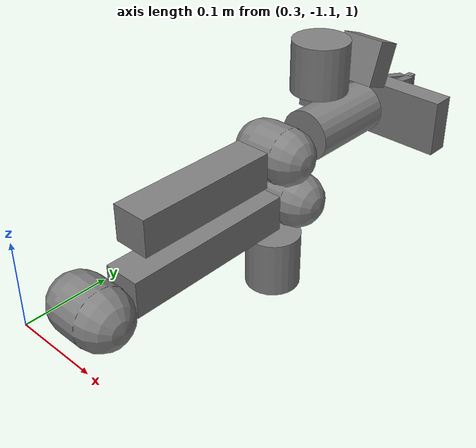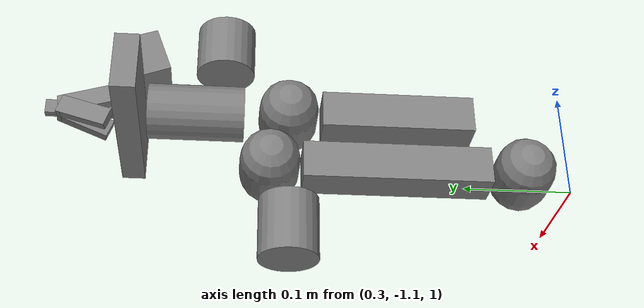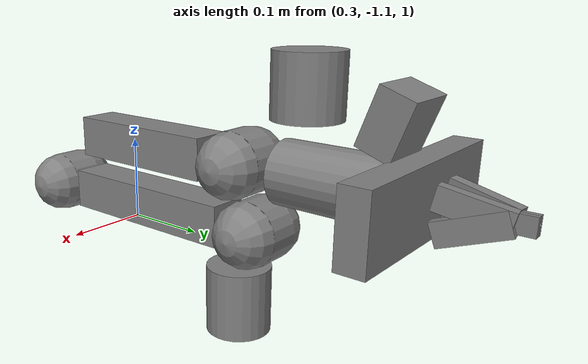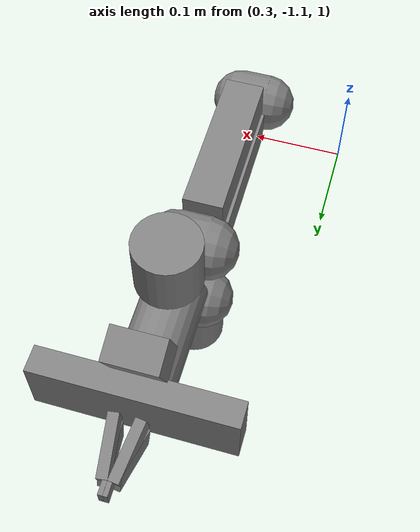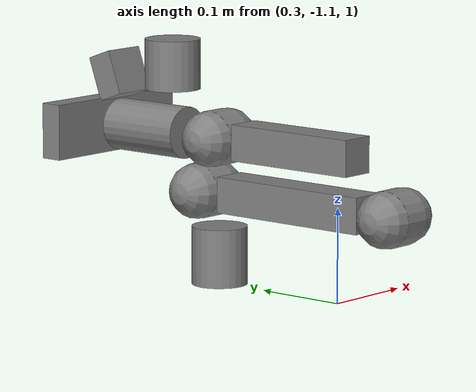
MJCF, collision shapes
<mujoco model="wxai_follower">
  <compiler angle="radian" meshdir="../meshes" texturedir="../" autolimits="true"/>

  <option integrator="implicitfast"/>

  <default>
    <default class="visual_right">
      <geom type="mesh" group="2" contype="0" conaffinity="0" material="trossen_black_right"/>
    </default>
    <default class="collision_right">
      <geom type="cylinder" group="3" mass="0" density="0"/>
    </default>
  </default>

  <asset>
    <material name="trossen_black_right" rgba="0.1 0.1 0.1 1"/>

    <mesh name="base_link_right" file="base_link.stl"/>
    <mesh name="link_1_right" file="link_1.stl"/>
    <mesh name="link_2_right" file="link_2.stl"/>
    <mesh name="link_3_right" file="link_3.stl"/>
    <mesh name="link_4_right" file="link_4.stl"/>
    <mesh name="link_5_right" file="link_5.stl"/>
    <mesh name="link_6_right" file="link_6.stl"/>
    <mesh name="carriage_right_right" file="carriage_right.stl"/>
    <mesh name="carriage_left_right" file="carriage_left.stl"/>
    <mesh name="camera_mount_d405_right_right" file="camera_mount_d405.stl"/>
    <mesh name="d405_right" file="d405.stl" scale="0.001 0.001 0.001"/>
    <mesh name="gripper_left_right" file="gripper_left.stl"/>
    <mesh name="gripper_right_right" file="gripper_right.stl"/>
  </asset>

  <worldbody>
    <body name="base_link_right" pos="0.405 -0.847 0.97" quat="0.707 0 0 0.707" gravcomp="1">
      <inertial pos="-0.00014175 -5.228e-05 0.03175177" quat="0.503748 -0.507380 -0.494230 -0.494510" mass="0.45969858" diaginertia="0.000213926 0.000416701 0.000448963"/>
      <geom class="visual_right" mesh="base_link_right"/>
      <geom class="collision_right" type="cylinder" size="0.031 0.0325" pos="0 0 0.0325" quat="1 0 0 0"/>
      <body name="link_1_right" pos="0 0 0.05725" gravcomp="1">
        <inertial pos="-0.00011075 0.00171176 0.0204459" quat="0.313955 0.305238 -0.643575 0.627752" mass="0.152704" diaginertia="0.000203432 0.000173907 8.3521e-05"/>
        <joint name="joint_0_right" pos="0 0 0" axis="0 0 1" range="-3.05433 3.05433" armature="0.032" frictionloss="0.1" actuatorgravcomp="true"/>
        <geom class="visual_right" mesh="link_1_right"/>
        <body name="link_2_right" pos="0.02 0 0.04625" gravcomp="1">
          <inertial pos="-0.131215 -0.00292583 0.00021345" quat="-0.00123582 0.706546 -0.00109575 0.707665" mass="1.15316" diaginertia="0.0179449 0.0173612 0.00102628"/>
          <joint name="joint_1_right" pos="0 0 0" axis="0 1 0" range="0 3.14159" armature="0.032" frictionloss="0.1" actuatorgravcomp="true"/>
          <geom class="visual_right" mesh="link_2_right"/>
          <geom class="collision_right" type="capsule" size="0.031 0.015" pos="0 0 0" quat="1 1 0 0"/>
          <geom class="collision_right" type="box" size="0.0975 0.02 0.02" pos="-0.131 0 0" quat="1 0 0 0"/>
          <body name="link_3_right" pos="-0.264 0 0" gravcomp="1">
            <inertial pos="0.180836 -0.0009409 0.0555494" quat="0.0103901 0.669684 -0.0033175 0.742566" mass="0.686666" diaginertia="0.00566898 0.00547578 0.00059316"/>
            <joint name="joint_2_right" pos="0 0 0" axis="0 -1 0" range="0 2.35619" armature="0.032" frictionloss="0.1" actuatorgravcomp="true"/>
            <geom class="visual_right" mesh="link_3_right"/>
            <geom class="collision_right" type="capsule" size="0.031 0.015" pos="0 0 0" quat="1 1 0 0"/>
            <geom class="collision_right" type="box" size="0.08 0.02 0.02" pos="0.13 0 0.06" quat="1 0 0 0"/>
            <body name="link_4_right" pos="0.245 0 0.06" gravcomp="1">
              <inertial pos="0.0579784 0.00027145 0.0588445" quat="0.948688 0.0346237 0.307828 0.0635164" mass="0.457899" diaginertia="0.000670827 0.000661455 0.000288648"/>
              <joint name="joint_3_right" pos="0 0 0" axis="0 -1 0" range="-1.5708 1.5708" armature="0.0018" frictionloss="0.1" actuatorgravcomp="true"/>
              <geom class="visual_right" mesh="link_4_right"/>
              <geom class="collision_right" type="capsule" size="0.031 0.015" pos="0 0 0" quat="1 1 0 0"/>
              <body name="link_5_right" pos="0.06775 0 0.0455" gravcomp="1">
                <inertial pos="0.00412447 -1.138e-05 -0.0428318" quat="0.496144 0.502128 0.503595 0.498098" mass="0.366939" diaginertia="0.000320622 0.00026751 0.000189108"/>
                <joint name="joint_4_right" pos="0 0 0" axis="0 0 -1" range="-1.5708 1.5708" armature="0.0018" frictionloss="0.1" actuatorgravcomp="true"/>
                <geom class="visual_right" mesh="link_5_right"/>
                <geom class="collision_right" type="cylinder" size="0.031 0.028" pos="0 0 0.03" quat="1 0 0 0"/>
                <body name="link_6_right" pos="0.02895 0 -0.0455" gravcomp="1">
                  <inertial pos="0.046841 0.00145133 0.00895674" quat="0.275854 0.291255 -0.691957 0.600225" mass="0.671874" diaginertia="0.00118316 0.00110863 0.00078309"/>
                  <joint name="joint_5_right" pos="0 0 0" axis="1 0 0" range="-3.14159 3.14159" armature="0.0018" frictionloss="0.1" actuatorgravcomp="true"/>
                  <geom class="visual_right" mesh="link_6_right"/>
                  <geom class="collision_right" type="cylinder" size="0.029 0.05" pos="0 0 0" quat="1 0 1 0"/>
                  <geom class="collision_right" type="box" size="0.0125 0.094 0.031" pos="0.0685 0 0" quat="1 0 0 0"/>
                  <!-- End-effector site at gripper tip -->
                  <site name="ee_site_right" pos="0.156 0 0" size="0.001"/>
                  <geom class="visual_right" pos="0.012 0 0" quat="1 0 0 0" mesh="camera_mount_d405_right_right"/>
                  <geom class="collision_right" type="box" size="0.0155 0.025 0.025" pos="0.0513206 0 0.0569399" quat="0.984808 0 0.173648 0"/>
                  <geom class="visual_right" type="box" size="0.0115 0.021 0.021" pos="0.0513206 0 0.0569399" quat="0.984808 0 0.173648 0"/>
                  <site name="camera_color_frame_right" pos="0.05864 0.009 0.05427" quat="0.9848078 0 0.1736482 0" size="0.005"/>
                  <camera name="cam_right" pos="0.05864 0.009 0.05427" quat="0.5793 0.4056 -0.4056 -0.5793" mode="fixed" fovy="87"/>
                  <body name="carriage_right_right" pos="0.0865 -0.023 0" gravcomp="1">
                    <inertial pos="0.00169015 0.00592793 0.00201817" quat="-0.370973 0.740886 -0.0847721 0.553427" mass="0.081271" diaginertia="4.29565e-05 3.87081e-05 2.21528e-05"/>
                    <joint name="right_carriage_joint_right" pos="0 0 0" axis="0 -1 0" type="slide" range="0 0.044" armature="0.1" frictionloss="0.1" actuatorgravcomp="true"/>
                    <geom class="visual_right" mesh="carriage_right_right"/>
                    <geom class="visual_right" mesh="gripper_right_right"/>
                    <geom class="collision_right" type="box" size="0.0275 0.005 0.01" pos="0.0286 0.01436 0.0037" quat="0.99257 -0.00451 0.10246 0.06547"/>
                    <geom class="collision_right" type="box" size="0.0275 0.005 0.01" pos="0.0285 0.01429 -0.00973" quat="0.98344 0.0133 -0.16893 0.06427"/>
                    <geom class="collision_right" type="box" size="0.00732 0.00214 0.00767" pos="0.0622 0.02083 -0.00105" quat="1 0 0 0"/>
                  </body>
                  <body name="carriage_left_right" pos="0.0865 0.023 0" gravcomp="1">
                    <inertial pos="0.00169017 -0.00592796 -0.00365701" quat="-0.0382691 0.628022 -0.255101 0.734198" mass="0.081271" diaginertia="4.21112e-05 3.61943e-05 2.40003e-05"/>
                    <joint name="left_carriage_joint_right" pos="0 0 0" axis="0 1 0" type="slide" range="0 0.044" armature="0.1" frictionloss="0.1" actuatorgravcomp="true"/>
                    <geom class="visual_right" mesh="carriage_left_right"/>
                    <geom class="visual_right" mesh="gripper_left_right"/>
                    <geom class="collision_right" type="box" size="0.0275 0.005 0.01" pos="0.0286 -0.01436 0.0037" quat="0.99257 0.00451 0.10246 -0.06547"/>
                    <geom class="collision_right" type="box" size="0.0275 0.005 0.01" pos="0.0285 -0.01429 -0.00973" quat="0.98344 -0.0133 -0.16893 -0.06427"/>
                    <geom class="collision_right" type="box" size="0.00732 0.00214 0.00767" pos="0.0622 -0.02083 -0.00105" quat="1 0 0 0"/>
                  </body>
                </body>
              </body>
            </body>
          </body>
        </body>
      </body>
    </body>
  </worldbody>

  <equality>
    <joint joint1="right_carriage_joint_right" joint2="left_carriage_joint_right" polycoef="0 1 0 0 0"/>
  </equality>

  <actuator>
    <position name="joint_0_right" joint="joint_0_right" kp="200" kv="10" ctrlrange="-3.05433 3.05433" forcerange="-27 27"/>
    <position name="joint_1_right" joint="joint_1_right" kp="200" kv="10" ctrlrange="0 3.14159" forcerange="-27 27"/>
    <position name="joint_2_right" joint="joint_2_right" kp="200" kv="10" ctrlrange="0 2.35619" forcerange="-27 27"/>
    <position name="joint_3_right" joint="joint_3_right" kp="100" kv="5" ctrlrange="-1.5708 1.5708" forcerange="-7 7"/>
    <position name="joint_4_right" joint="joint_4_right" kp="50" kv="5" ctrlrange="-1.5708 1.5708" forcerange="-7 7"/>
    <position name="joint_5_right" joint="joint_5_right" kp="50" kv="5" ctrlrange="-3.14159 3.14159" forcerange="-7 7"/>
    <position name="left_gripper_right" joint="left_carriage_joint_right" kp="1000" kv="50" ctrlrange="0 0.044" forcerange="-400 400"/>
  </actuator>

  <keyframe>
    <key name="home_right" qpos="0 0 0 0 0 0 0 0" ctrl="0 0 0 0 0 0 0"/>
  </keyframe>
</mujoco>
